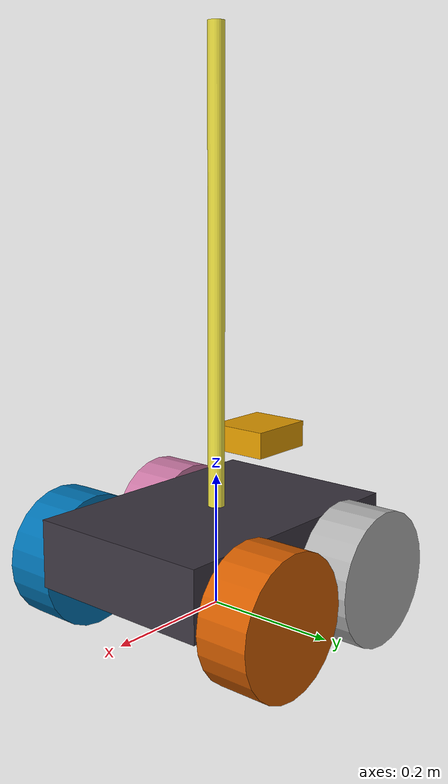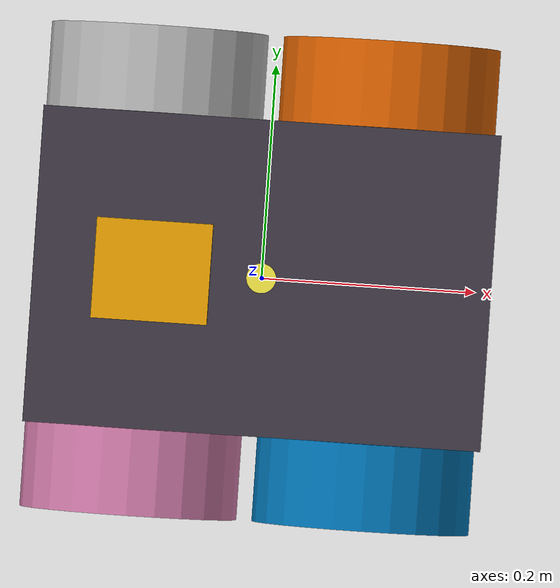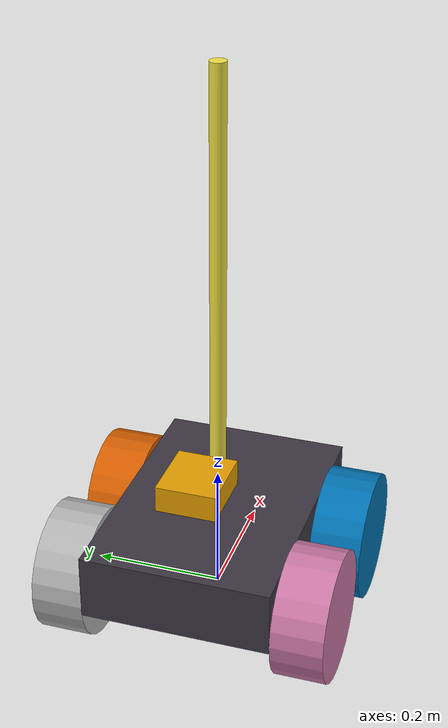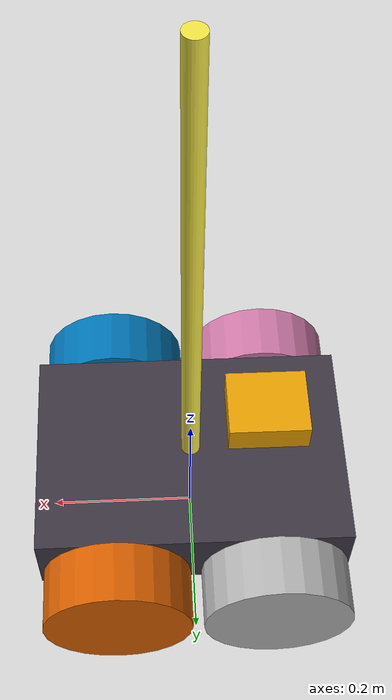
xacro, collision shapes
<?xml version="1.0"?>
<robot xmlns:xacro="http://www.ros.org/wiki/xacro" name="rover">

<xacro:include filename="$(find rover_description_pkg)/urdf/rover_macro.xacro"/>
<xacro:include filename="$(find rover_description_pkg)/urdf/utilities.xacro"/>
<xacro:include filename="$(find rover_description_pkg)/urdf/rover_gazebo.xacro"/>

<xacro:arg name="is_sim" default="true"/>

<link name="base_footprint">
</link>

<xacro:rover_base_frame parent_link="base_footprint"/>

<!-- if it is in simulation -->
     <xacro:rover_wheels_sim left_joint="diff_drive_l_joint" right_joint="diff_drive_r_joint"/>
    <xacro:gazebo_diff_drive_controller left_joint="diff_drive_l_joint" right_joint="diff_drive_r_joint"/>
    <xacro:gazebo_wheel_contact/>
   <xacro:lidar_gazebo_sensor laser_frame="lidar_link" laser_topic="scan"/>

</robot>

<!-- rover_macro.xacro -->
<robot xmlns:xacro="http://www.ros.org/wiki/xacro" name="rover_macro">

        <!-- rover properties -->
    <xacro:property name="track_width" value="0.08"/>
    <xacro:property name="total_width" value="0.4515"/>
    <xacro:property name="total_length" value="0.422"/>
    <xacro:property name="total_height" value="0.202"/>
    <xacro:property name="chassis_width" value="0.241"/>
    <xacro:property name="chassis_height" value="0.0785"/>
    <xacro:property name="chassis_length" value="0.320"/>
    <xacro:property name="track_distance" value="0.2915"/>
    <xacro:property name="wheel_axes_distance" value="0.220"/>
    <xacro:property name="wheel_collision_x" value="${total_length/2 - total_height/2 - 0.001}"/>
    <xacro:property name="wheel_collision_y" value="${track_width}"/>
    <xacro:property name="wheel_collision_z" value="${total_height - 0.02}"/>
    <xacro:property name="rover_z_elev" value="${total_height/2 - chassis_height/2}"/>
    <xacro:property name="collision_z_elev" value="${chassis_height/2}"/>

    <!-- Robot Parameters -->
    <xacro:property name="wheel_z_offset" value="0.020" />
    <xacro:property name="wheel_x_offset" value="${wheel_axes_distance/2}" />
    <xacro:property name="front_flipper_x_offset" value="-0.0035" />
    <xacro:property name="wheel_y_offset" value="${(total_width-track_width)/2}" />
    <xacro:property name="track_y_offset" value="0.11" />
    <xacro:property name="wheel_mass" value="1.25" />

    <xacro:property name="payload_z_offset" value="0.096" />

    <xacro:macro name="rover_base_frame" params="parent_link">

        <joint name="world_base_joint" type="fixed">
            <parent link="${parent_link}"/>
            <child link="base_link"/>
            <origin xyz="0.0 0.0 ${rover_z_elev}" rpy="0.0 0.0 0.0"/>
        </joint>

        <link name="base_link">
            <visual>
                <origin xyz="0 0 -0.035" rpy="0 0 0" />
                <geometry>
                    <mesh filename="file://$(find rover_description_pkg)/meshes/prisma_rover.stl" scale="0.001 0.001 0.001"/>
                </geometry>
                <material name="grey">
                    <color rgba="0.2350821 0.2106182 0.2557221 1.0"/>
                </material>
            </visual>
            <inertial>
                <origin xyz="0.0 0.0 0.0" rpy="0.0 0.0 0.0"/>
                <mass value="10.0"/>
                <!-- the x coefficient is a pezzotto to avoid rocking movement of the rover -->
                <xacro:box_inertia m="10.0" x="${total_length}" y="${total_width}" z="${total_height}"/>
            </inertial>
            <collision>
                <origin xyz="0.0 0.0 ${collision_z_elev}" rpy="0.0 0.0 0.0"/>
                <geometry>
                    <box size="${total_length} ${total_width - 2*track_width} ${total_height - 0.1}"/>
                </geometry>
            </collision>
        </link>

        <link name="pole_link">
            <collision>
            <origin xyz="0.0 0.0 0.0" rpy="0 0 0"/>
                <geometry>
                    <cylinder radius="0.0125" length="${1.1-2*total_height}"/>
                </geometry>
            </collision>
        </link>

    </xacro:macro>

    <link name="payload_link">

        <collision>
            <origin xyz="-0.1 0.0 0.04" rpy="0 0 0" />
            <geometry>
                <box size="${total_length/4} ${total_width -4.5*track_width} 0.04"/>
            </geometry>
        </collision>

        <inertial>
            <origin xyz="-0.01 0 0" rpy="0 0 0"/>
            <mass value="2.95" />
            <inertia ixx="0.018398" ixy="0.0"  ixz="0.0" iyy="0.04064" iyz="0.0" izz="0.05396" />
        </inertial>
    </link>

    <joint name="payload_to_base" type="fixed">
        <parent link="base_link"/>
        <child link="payload_link"/>
        <origin xyz="0 0 0.14"/>
    </joint>

    <joint name="pole_to_payload" type="fixed">
        <origin xyz="0 0 ${0.4 - total_height/2}" rpy="0 0 0"/>
        <parent link="payload_link"/>
        <child link="pole_link"/>
    </joint>

<xacro:macro name="lidar_gazebo_sensor" params="laser_frame laser_topic namespace">

        <joint name="lidar_to_payload" type="fixed">
            <parent link="payload_link"/>
            <child link="${laser_frame}"/>
            <origin xyz="0.075 0 -0.01" rpy="0.0 0.0 3.1415"/>
        </joint>

        <link name="${laser_frame}">
            <visual>
                <origin xyz="0 0 0" rpy="-1.57 0.0 3.1415"/>
                <geometry>
                    <mesh filename="file://$(find rover_description_pkg)/meshes/rplidar_s2.dae"/>
                </geometry>
            </visual>

            <collision>
                <origin xyz="0 0 0" rpy="0 0 3.1415"/>
                <geometry>
                    <cylinder radius="0.04" length="0.15"/>
                </geometry>
            </collision>

        </link>

        <gazebo reference="${laser_frame}">
        <sensor name='gpu_lidar' type='gpu_lidar'>
            <pose>0 0 0 0 0 0</pose>
            <ignition_frame_id>${namespace}/lidar_link</ignition_frame_id>
            <gz_frame_id>${namespace}/lidar_link</gz_frame_id>
            <update_rate>5</update_rate>
            <lidar>
                <scan>
                <horizontal>
                    <samples>640</samples>
                    <resolution>1</resolution>
                    <min_angle>-3.14159</min_angle>
                    <max_angle>3.14159</max_angle>
                </horizontal>
                <vertical>
                    <samples>1</samples>
                    <resolution>1</resolution>
                    <min_angle>0.0</min_angle>
                    <max_angle>0.0</max_angle>
                </vertical>
                </scan>
                <range>
                <min>0.23</min>
                <max>10.0</max>
                <resolution>0.05</resolution>
                </range>
            </lidar>
            <visualize>true</visualize>
        </sensor>
    </gazebo>

    </xacro:macro>
</robot>

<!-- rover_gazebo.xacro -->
<robot xmlns:xacro="http://www.ros.org/wiki/xacro" name="rover_gazebo">

<xacro:macro name="rover_wheels_sim" params="left_joint right_joint">
    <link name="fr_wheel_link">
        <visual>
            <origin xyz="0 0 0" rpy="-1.57 0 0" />
            <geometry>
                <mesh filename="file://$(find rover_description_pkg)/meshes/pro_tire.dae" scale="0.5 0.5 1.0"/>
            </geometry>
        </visual>

        <collision>
            <origin xyz="0 0 0" rpy="-1.57 0 0" />
            <geometry>
                <cylinder radius="${total_height/2}" length="${track_width}"/>
            </geometry>
        </collision>

        <inertial>
            <origin xyz="0 0 0" rpy="0 0 0" />
            <mass value="${wheel_mass}" />
            <inertia ixx="0.005645" ixy="0.0"  ixz="0.0" iyy= "0.01008" iyz="0.0" izz="0.005645"/>
        </inertial>
        <mu>5.0</mu>
    </link>
    <joint name="fr_wheel_to_base" type="continuous">
        <parent link="base_link"/>
        <child link="fr_wheel_link"/>
        <axis xyz="0 1 0"/>
        <origin xyz="${wheel_x_offset + front_flipper_x_offset} ${-wheel_y_offset} 0" rpy="0 0 0"/>
    </joint>

    <link name="fl_wheel_link">
        <visual>
            <origin xyz="0 0 0" rpy="1.57 0 0" />
            <geometry>
                <mesh filename="file://$(find rover_description_pkg)/meshes/pro_tire.dae" scale="0.5 0.5 1.0"/>
            </geometry>
        </visual>

        <collision>
            <origin xyz="0 0 0" rpy="1.57 0 0" />
            <geometry>
                <cylinder radius="${total_height/2}" length="${track_width}"/>
            </geometry>
        </collision>

        <inertial>
            <origin xyz="0 0 0" rpy="0 0 0" />
            <mass value="${wheel_mass}" />
            <inertia ixx="0.005645" ixy="0.0"  ixz="0.0" iyy= "0.01008" iyz="0.0" izz="0.005645"/>
        </inertial>
        <mu>5.0</mu>
    </link>
    <joint name="fl_wheel_to_base" type="continuous">
        <parent link="base_link"/>
        <child link="fl_wheel_link"/>
        <axis xyz="0 1 0"/>
        <origin xyz="${wheel_x_offset + front_flipper_x_offset} ${wheel_y_offset} 0" rpy="0 0 0"/>
    </joint>

    <link name="rr_wheel_link">
        <visual>
            <origin xyz="0 0 0" rpy="1.57 0 3.1415" />
            <geometry>
                <mesh filename="file://$(find rover_description_pkg)/meshes/pro_tire.dae" scale="0.5 0.5 1.0"/>
            </geometry>
        </visual>

        <collision>
            <origin xyz="0 0 0" rpy="1.57 0 3.1415" />
            <geometry>
                <cylinder radius="${total_height/2}" length="${track_width}"/>
            </geometry>
        </collision>

        <inertial>
            <origin xyz="0 0 0" rpy="0 0 0" />
            <mass value="${wheel_mass}" />
            <inertia ixx="0.005645" ixy="0.0"  ixz="0.0" iyy= "0.01008" iyz="0.0" izz="0.005645"/>
        </inertial>
        <mu>5.0</mu>
    </link>
    <joint name="rr_wheel_to_base" type="continuous">
        <parent link="base_link"/>
        <child link="rr_wheel_link"/>
        <axis xyz="0 1 0"/>
        <origin xyz="${-wheel_x_offset} ${-wheel_y_offset} 0"/>
    </joint>

    <link name="rl_wheel_link">
        <visual>
            <origin xyz="0 0 0" rpy="-1.57 0 3.1415" />
            <geometry>
                <mesh filename="file://$(find rover_description_pkg)/meshes/pro_tire.dae" scale="0.5 0.5 1.0"/>
            </geometry>
        </visual>

        <collision>
            <origin xyz="0 0 0" rpy="-1.57 0 3.1415" />
            <geometry>
                <cylinder radius="${total_height/2}" length="${track_width}"/>
            </geometry>
        </collision>

        <inertial>
            <origin xyz="0 0 0" rpy="0 0 0" />
            <mass value="${wheel_mass}" />
            <inertia ixx="0.005645" ixy="0.0"  ixz="0.0" iyy= "0.01008" iyz="0.0" izz="0.005645"/>
        </inertial>
        <mu>5.0</mu>
    </link>
    <joint name="rl_wheel_to_base" type="continuous">
        <parent link="base_link"/>
        <child link="rl_wheel_link"/>
        <axis xyz="0 1 0"/>
        <origin xyz="${-wheel_x_offset} ${wheel_y_offset} 0"/>
    </joint>
</xacro:macro>

<!-- Camera -->
<xacro:macro name="camera_gazebo" params="camera_base_frame camera_topic camera_info_topic">
    <xacro:include filename="$(find realsense2_description)/urdf/_d435i.urdf.xacro"/>

    <joint name="camera_to_payload" type="fixed">
        <origin xyz="0.02 0 ${1 -0.129 - total_height}" rpy="0 0 0"/>
        <parent link="payload_link"/>
        <child link="${camera_base_frame}"/>
    </joint>

    <link name="${camera_base_frame}">
        <visual>
        <origin xyz="0 0 0" rpy="1.57 0 1.57"/>
        <geometry>
                <mesh filename="file://$(find rover_description_pkg)/meshes/realsense.dae "/>
        </geometry>
        </visual>
        <collision>
        <origin xyz="-0.01 0.0 0.0" rpy="0 0 0"/>
        <geometry>
            <box size="0.02 0.1 0.025"/>
        </geometry>
        </collision>
    </link>

  <joint name="camera_rgb_joint" type="fixed">
    <origin xyz="0.005 0.018 0.013" rpy="0 0 0"/>
    <parent link="${camera_base_frame}"/>
    <child link="camera_rgb_frame"/>
  </joint>
  <link name="camera_rgb_frame"/>

  <joint name="camera_rgb_optical_joint" type="fixed">
    <origin xyz="0 0 0" rpy="-1.57 0 -1.57"/>
    <parent link="camera_rgb_frame"/>
    <child link="camera_rgb_optical_frame"/>
  </joint>
  <link name="camera_rgb_optical_frame"/>

  <joint name="camera_depth_joint" type="fixed">
    <origin xyz="0.005 0.028 0.013" rpy="0 0 0"/>
    <parent link="${camera_base_frame}"/>
    <child link="camera_depth_frame"/>
  </joint>
  <link name="camera_depth_frame"/>

  <joint name="camera_depth_optical_joint" type="fixed">
    <origin xyz="0 0 0" rpy="0 0 0"/>
    <parent link="camera_depth_frame"/>
    <child link="camera_depth_optical_frame"/>
  </joint>
  <link name="camera_depth_optical_frame"/>

    <gazebo reference="${camera_base_frame}">
        <sensor name="d435_color" type="camera">
            <topic>color/image_raw</topic>
            <ignition_frame_id>rover/camera_link</ignition_frame_id>
            <gz_frame_id>rover/camera_link</gz_frame_id>
            <camera name="d435">
                <camera_info_topic>color/camera_info</camera_info_topic>
                <horizontal_fov>1.21126</horizontal_fov>
				<image>
					<width>640</width>
					<height>480</height>
					<format>RGB_INT8</format>
				</image>
				<clip>
					<near>0.1</near>
					<far>100</far>
				</clip>
				<noise>
					<type>gaussian</type>
					<mean>0</mean>
					<stddev>0.007</stddev>
				</noise>
            </camera>
            <always_on>true</always_on>
            <update_rate>10</update_rate>
            <visualize>true</visualize>
        </sensor>

		<sensor name="d435_depth" type="depth_camera">
			<always_on>1</always_on>
			<update_rate>10</update_rate>
			<visualize>0</visualize>
			<topic>depth/image_raw</topic>
            <ignition_frame_id>rover/camera_depth_optical_frame</ignition_frame_id>
			<pose>0 0.0175 0.5125 0 -0 0</pose>
			<camera name="d435">
                <point_cloud_topic>depth/color/points</point_cloud_topic>
                <camera_info_topic>depth/camera_info</camera_info_topic>
				<horizontal_fov>1.48702</horizontal_fov>
				<image>
					<width>1280</width>
					<height>720</height>
				</image>
				<clip>
					<near>0.1</near>
					<far>100</far>
				</clip>
			</camera>
		</sensor>
    </gazebo>

    <gazebo>
        <plugin filename="libignition-gazebo-sensors-system.so" name="ignition::gazebo::systems::Sensors">
            <render_engine>ogre2</render_engine>
        </plugin>
    </gazebo>
</xacro:macro>

    <!-- Gazebo Plugins -->
<xacro:macro name="gazebo_diff_drive_controller" params="left_joint right_joint">

    <gazebo>
        <plugin name="ignition::gazebo::systems::DiffDrive" filename="ignition-gazebo-diff-drive-system">
            <num_wheel_pairs>2</num_wheel_pairs>
            <!-- Wheel Information -->
            <left_joint>rl_wheel_to_base</left_joint>
            <left_joint>fl_wheel_to_base</left_joint>
            <right_joint>rr_wheel_to_base</right_joint>
            <right_joint>fr_wheel_to_base</right_joint>
            <wheel_separation>0.37</wheel_separation>
            <wheel_radius>0.102</wheel_radius>

            <!-- Limits -->
            <max_linear_acceleration>5</max_linear_acceleration>
            <min_linear_acceleration>-5</min_linear_acceleration>
            <max_angular_acceleration>4</max_angular_acceleration>
            <min_angular_acceleration>-4</min_angular_acceleration>

            <!-- Output -->
            <frame_id>rover/odom</frame_id>
            <child_frame_id>rover/base_link</child_frame_id>

            <!-- Topics -->
            <topic>cmd_vel</topic>
            <odom_topic>/odom/wheels</odom_topic>
            <tf_topic>/tf_gazebo</tf_topic>

        </plugin>

        <plugin filename="ignition-gazebo-joint-state-publisher-system" name="ignition::gazebo::systems::JointStatePublisher">
            <topic>/joint_states</topic>
        </plugin>

    </gazebo>
</xacro:macro>

<xacro:macro name="gazebo_wheel_contact">
    <gazebo reference="diff_wheel_left">
        <mu1 value="1.0"/>
        <mu2 value="1.0"/>
        <kp value="1e15"/>
        <kd value="1e13"/>
        <fdir1 value="0 0 1"/>
    </gazebo>

    <gazebo reference="diff_wheel_right">
        <mu1 value="1.0"/>
        <mu2 value="1.0"/>
        <kp value="1e15"/>
        <kd value="1e13"/>
        <fdir1 value="0 0 1"/>
    </gazebo>

    <gazebo reference="collision_f_l">
        <mu1 value="0.1"/>
        <mu2 value="0.1"/>
        <kp value="10000000.0"/>
        <kd value="100.0"/>
        <minDepth>0.001</minDepth>
    </gazebo>

    <gazebo reference="collision_f_r">
        <mu1 value="0.1"/>
        <mu2 value="0.1"/>
        <kp value="10000000.0"/>
        <kd value="100.0"/>
        <minDepth>0.001</minDepth>
    </gazebo>

    <gazebo reference="collision_b_l">
        <mu1 value="0.1"/>
        <mu2 value="0.1"/>
        <kp value="10000000.0"/>
        <kd value="100.0"/>
        <minDepth>0.001</minDepth>
    </gazebo>

    <gazebo reference="collision_b_r">
        <mu1 value="0.1"/>
        <mu2 value="0.1"/>
        <kp value="10000000.0"/>
        <kd value="100.0"/>
        <minDepth>0.001</minDepth>
    </gazebo>
</xacro:macro>

</robot>
